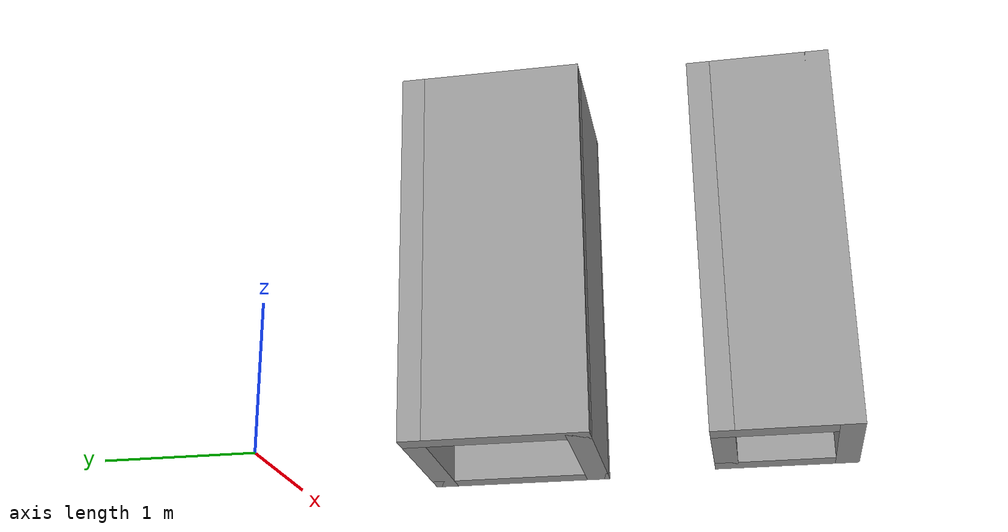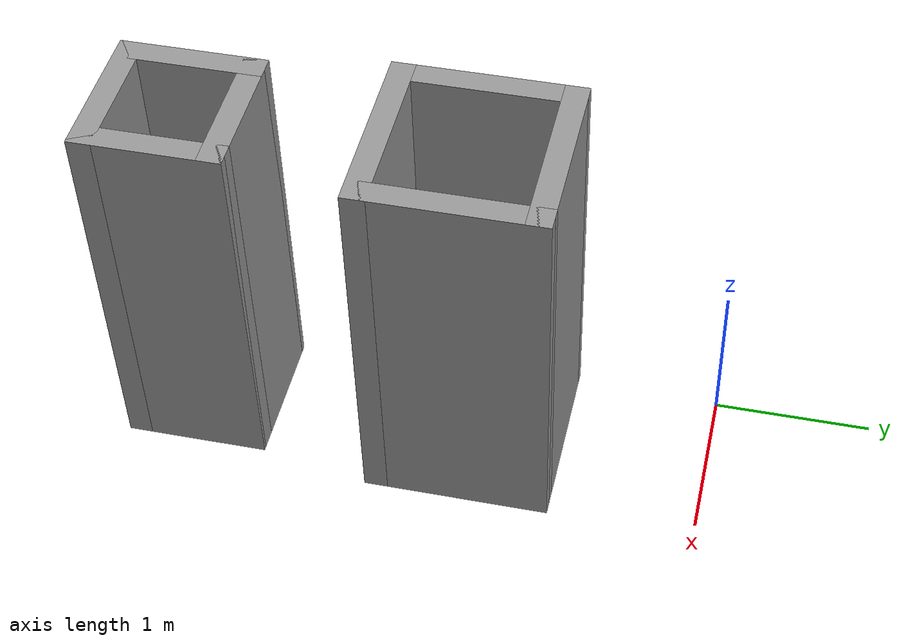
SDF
<?xml version='1.0'?>
<sdf version='1.6'>
  <model name='kakoi_hasira'>
    <pose frame=''>0.51 -2.32 0 0 -0 0</pose>
    <link name='Wall_11'>
      <collision name='Wall_11_Collision'>
        <geometry>
          <box>
            <size>1.18 0.15 2.5</size>
          </box>
        </geometry>
        <pose frame=''>0 0 1.25 0 -0 0</pose>
      </collision>
      <visual name='Wall_11_Visual'>
        <pose frame=''>0 0 1.25 0 -0 0</pose>
        <geometry>
          <box>
            <size>1.18 0.15 2.5</size>
          </box>
        </geometry>
        <material>
          <script>
            <uri>file://media/materials/scripts/gazebo.material</uri>
            <name>Gazebo/Grey</name>
          </script>
          <ambient>1 1 1 1</ambient>
        </material>
      </visual>
      <pose frame=''>-0.51 0.805 0 0 0 -1.5708</pose>
    </link>
    <link name='Wall_13'>
      <collision name='Wall_13_Collision'>
        <geometry>
          <box>
            <size>1.17 0.15 2.5</size>
          </box>
        </geometry>
        <pose frame=''>0 0 1.25 0 -0 0</pose>
      </collision>
      <visual name='Wall_13_Visual'>
        <pose frame=''>0 0 1.25 0 -0 0</pose>
        <geometry>
          <box>
            <size>1.17 0.15 2.5</size>
          </box>
        </geometry>
        <material>
          <script>
            <uri>file://media/materials/scripts/gazebo.material</uri>
            <name>Gazebo/Grey</name>
          </script>
          <ambient>1 1 1 1</ambient>
        </material>
      </visual>
      <pose frame=''>0 0.29 0 0 -0 0</pose>
    </link>
    <link name='Wall_18'>
      <collision name='Wall_18_Collision'>
        <geometry>
          <box>
            <size>0.91 0.15 2.5</size>
          </box>
        </geometry>
        <pose frame=''>0 0 1.25 0 -0 0</pose>
      </collision>
      <visual name='Wall_18_Visual'>
        <pose frame=''>0 0 1.25 0 -0 0</pose>
        <geometry>
          <box>
            <size>0.91 0.15 2.5</size>
          </box>
        </geometry>
        <material>
          <script>
            <uri>file://media/materials/scripts/gazebo.material</uri>
            <name>Gazebo/Grey</name>
          </script>
          <ambient>1 1 1 1</ambient>
        </material>
      </visual>
      <pose frame=''>0.005 -0.56 0 0 -0 0</pose>
    </link>
    <link name='Wall_26'>
      <collision name='Wall_26_Collision'>
        <geometry>
          <box>
            <size>0.91 0.15 2.5</size>
          </box>
        </geometry>
        <pose frame=''>0 0 1.25 0 -0 0</pose>
      </collision>
      <visual name='Wall_26_Visual'>
        <pose frame=''>0 0 1.25 0 -0 0</pose>
        <geometry>
          <box>
            <size>0.91 0.15 2.5</size>
          </box>
        </geometry>
        <material>
          <script>
            <uri>file://media/materials/scripts/gazebo.material</uri>
            <name>Gazebo/Grey</name>
          </script>
          <ambient>1 1 1 1</ambient>
        </material>
      </visual>
      <pose frame=''>-0.375 -0.94 0 0 0 -1.5708</pose>
    </link>
    <link name='Wall_28'>
      <collision name='Wall_28_Collision'>
        <geometry>
          <box>
            <size>0.91 0.15 2.5</size>
          </box>
        </geometry>
        <pose frame=''>0 0 1.25 0 -0 0</pose>
      </collision>
      <visual name='Wall_28_Visual'>
        <pose frame=''>0 0 1.25 0 -0 0</pose>
        <geometry>
          <box>
            <size>0.91 0.15 2.5</size>
          </box>
        </geometry>
        <material>
          <script>
            <uri>file://media/materials/scripts/gazebo.material</uri>
            <name>Gazebo/Grey</name>
          </script>
          <ambient>1 1 1 1</ambient>
        </material>
      </visual>
      <pose frame=''>0.385 -0.94 0 0 0 -1.5708</pose>
    </link>
    <link name='Wall_30'>
      <collision name='Wall_30_Collision'>
        <geometry>
          <box>
            <size>0.91 0.15 2.5</size>
          </box>
        </geometry>
        <pose frame=''>0 0 1.25 0 -0 0</pose>
      </collision>
      <visual name='Wall_30_Visual'>
        <pose frame=''>0 0 1.25 0 -0 0</pose>
        <geometry>
          <box>
            <size>0.91 0.15 2.5</size>
          </box>
        </geometry>
        <material>
          <script>
            <uri>file://media/materials/scripts/gazebo.material</uri>
            <name>Gazebo/Grey</name>
          </script>
          <ambient>1 1 1 1</ambient>
        </material>
      </visual>
      <pose frame=''>0.005 -1.32 0 0 -0 0</pose>
    </link>
    <link name='Wall_6'>
      <collision name='Wall_6_Collision'>
        <geometry>
          <box>
            <size>1.17 0.15 2.5</size>
          </box>
        </geometry>
        <pose frame=''>0 0 1.25 0 -0 0</pose>
      </collision>
      <visual name='Wall_6_Visual'>
        <pose frame=''>0 0 1.25 0 -0 0</pose>
        <geometry>
          <box>
            <size>1.17 0.15 2.5</size>
          </box>
        </geometry>
        <material>
          <script>
            <uri>file://media/materials/scripts/gazebo.material</uri>
            <name>Gazebo/Grey</name>
          </script>
          <ambient>1 1 1 1</ambient>
        </material>
      </visual>
      <pose frame=''>0 1.32 0 0 -0 0</pose>
    </link>
    <link name='Wall_9'>
      <collision name='Wall_9_Collision'>
        <geometry>
          <box>
            <size>1.18 0.15 2.5</size>
          </box>
        </geometry>
        <pose frame=''>0 0 1.25 0 -0 0</pose>
      </collision>
      <visual name='Wall_9_Visual'>
        <pose frame=''>0 0 1.25 0 -0 0</pose>
        <geometry>
          <box>
            <size>1.18 0.15 2.5</size>
          </box>
        </geometry>
        <material>
          <script>
            <uri>file://media/materials/scripts/gazebo.material</uri>
            <name>Gazebo/Grey</name>
          </script>
          <ambient>1 1 1 1</ambient>
        </material>
      </visual>
      <pose frame=''>0.51 0.805 0 0 0 -1.5708</pose>
    </link>
    <static>1</static>
  </model>
</sdf>
